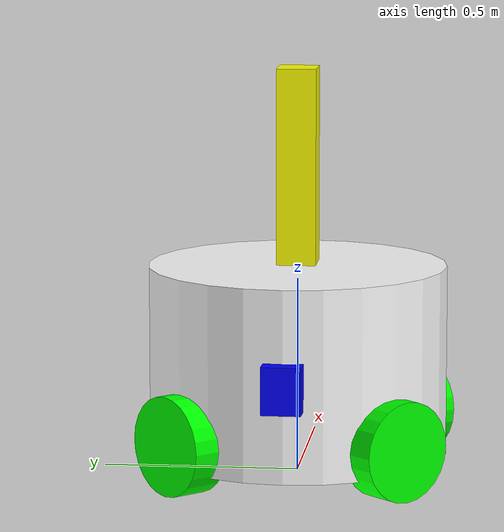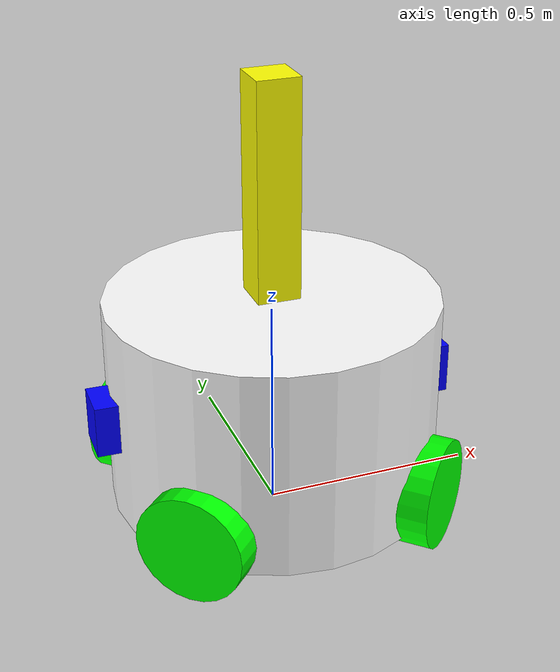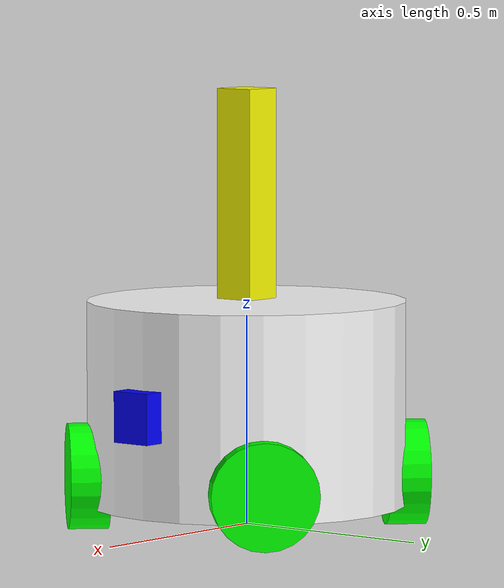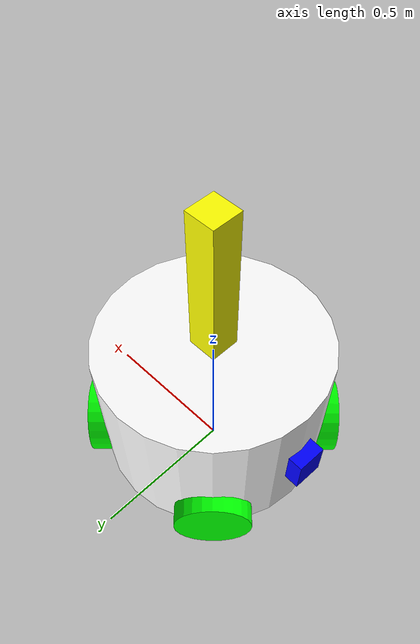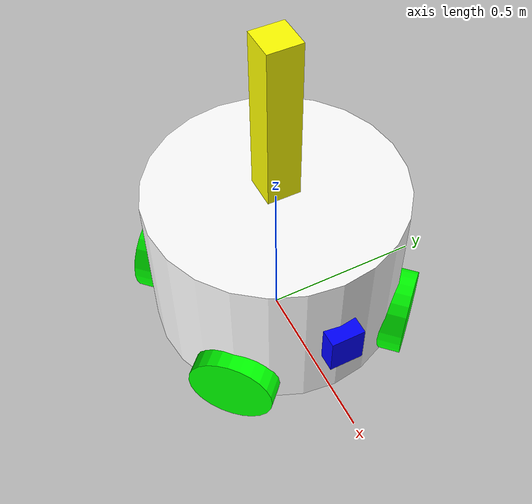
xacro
<?xml version="1.0"?>
<robot xmlns:xacro="http://www.ros.org/wiki/xacro" name="AMR">

    <link name="base_footprint">
    </link>

    <link name="main_body_link">
        <inertial>
            <origin xyz="0.0 0.0 0.0" rpy="0.0 0.0 0.0"/>
            <mass value="0.0"/>
            <inertia ixx="0.0" ixy="0.0" ixz="0.0" iyy="0.0" iyz="0.0" izz="0.0"/>
        </inertial>
        <visual name="">
            <origin xyz="0.0 0.0 0.0" rpy="0.0 0.0 0.0"/>
            <geometry>
                <cylinder radius="0.3815" length="0.487"/>
            </geometry>
            <material name="grey">
                <color rgba="1.0 1.0 1.0 1.0"/>
                <texture filename=""/>
            </material>
        </visual>
        <collision>
            <origin xyz="0.0 0.0 0.0" rpy="0.0 0.0 0.0"/>
            <geometry>
                <box size="0.0 0.0 0.0"/>
            </geometry>
        </collision>
    </link>

    <joint name="joint_name" type="fixed">
        <parent link="base_footprint"/>
        <child link="main_body_link"/>
        <origin xyz="0.0 0.0 0.293" rpy="0.0 0.0 0.0"/>
    </joint>

    <link name="floor_main_body_link">
    </link>

    <joint name="main_body_to_floor_main_body" type="fixed">
        <origin xyz="0.0 0.0 -0.173" rpy="0.0 0.0 0.0"/>
        <parent link="main_body_link"/>
        <child link="floor_main_body_link"/>
        <axis xyz="0.0 0.0 0.0"/>
        <limit lower="0.0" upper="0.0" effort="0.0" velocity="0.0"/>
    </joint>

    <link name="lidar_front_link">
        <inertial>
            <origin xyz="0.0 0.0 0.0" rpy="0.0 0.0 0.0"/>
            <mass value="0.0"/>
            <inertia ixx="0.0" ixy="0.0" ixz="0.0" iyy="0.0" iyz="0.0" izz="0.0"/>
        </inertial>
        <visual name="">
            <origin xyz="0.0 0.0 0.0" rpy="0.0 0.0 0.0"/>
            <geometry>
                <box size="0.10 0.10 0.12"/>
            </geometry>
            <material name="">
                <color rgba="0.0 0.0 1.0 1.0"/>
                <texture filename=""/>
            </material>
        </visual>
        <collision>
            <origin xyz="0.0 0.0 0.0" rpy="0.0 0.0 0.0"/>
            <geometry>
                <box size="0.0 0.0 0.0"/>
            </geometry>
        </collision>
    </link>

    <joint name="main_body_to_lidar_front" type="fixed">
        <parent link="main_body_link"/>
        <child link="lidar_front_link"/>
        <origin xyz="0.377 0.0 0.0" rpy="0.0 0.0 0.0"/>
    </joint>

    <link name="lidar_rear_link">
        <inertial>
            <origin xyz="0.0 0.0 0.0" rpy="0.0 0.0 0.0"/>
            <mass value="0.0"/>
            <inertia ixx="0.0" ixy="0.0" ixz="0.0" iyy="0.0" iyz="0.0" izz="0.0"/>
        </inertial>
        <visual name="">
            <origin xyz="0.0 0.0 0.0" rpy="0.0 0.0 0.0"/>
            <geometry>
                <box size="0.10 0.10 0.12"/>
            </geometry>
            <material name="">
                <color rgba="0.0 0.0 1.0 1.0"/>
                <texture filename=""/>
            </material>
        </visual>
        <collision>
            <origin xyz="0.0 0.0 0.0" rpy="0.0 0.0 0.0"/>
            <geometry>
                <box size="0.0 0.0 0.0"/>
            </geometry>
        </collision>
    </link>

    <joint name="main_body_to_lidar_rear" type="fixed">
        <parent link="main_body_link"/>
        <child link="lidar_rear_link"/>
        <origin xyz="-0.377 0.0 0.0" rpy="0.0 0.0 1.54"/>
    </joint>

    <link name="ceiling_main_body_link">
    </link>

    <joint name="main_body_to_ceiling" type="fixed">
        <parent link="main_body_link"/>
        <child link="ceiling_main_body_link"/>
        <origin xyz="0.0 0.0 0.248" rpy="0.0 0.0 0.0"/>
    </joint>

    <!-- Wrist -->
    <link name="wrist_link">
        <inertial>
            <origin xyz="0.0 0.0 0.0" rpy="0.0 0.0 0.0"/>
            <mass value="0.0"/>
            <inertia ixx="0.0" ixy="0.0" ixz="0.0" iyy="0.0" iyz="0.0" izz="0.0"/>
        </inertial>
        <visual name="">
            <origin xyz="0.0 0.0 0.0" rpy="0.0 0.0 0.0"/>
            <geometry>
                <box size="0.1 0.1 0.5"/>
            </geometry>
            <material name="">
                <color rgba="1.0 1.0 0.0 1.0"/>
                <texture filename=""/>
            </material>
        </visual>
        <collision>
            <origin xyz="0.0 0.0 0.0" rpy="0.0 0.0 0.0"/>
            <geometry>
                <box size="0.0 0.0 0.0"/>
            </geometry>
        </collision>
    </link>

    <joint name="ceiling_main_body_link_to_wrist_link" type="fixed">
        <parent link="ceiling_main_body_link"/>
        <child link="wrist_link"/>
        <origin xyz="0.0 0.0 0.25" rpy="0.0 0.0 0.0"/>
    </joint>

<xacro:macro name="wheel" params="position x y roll yaw">
    <link name="wheel_${position}_link">
        <inertial>
            <origin xyz="0.0 0.0 0.0" rpy="0.0 0.0 0.0"/>
            <mass value="0.0"/>
            <inertia ixx="0.0" ixy="0.0" ixz="0.0" iyy="0.0" iyz="0.0" izz="0.0"/>
        </inertial>
        <visual name="">
            <origin xyz="0.0 0.0 0.0" rpy="0.0 0.0 0.0"/>
            <geometry>
                <cylinder radius="0.127" length="0.095"/>

            </geometry>
            <material name="green">
                <color rgba="0.0 1.0 0.0 1.0"/>
                <texture filename=""/>
            </material>
        </visual>
        <collision>
            <origin xyz="0.0 0.0 0.0" rpy="0.0 0.0 0.0"/>
            <geometry>
                <box size="0.0 0.0 0.0"/>
            </geometry>
        </collision>
    </link>

    <joint name="floor_main_body_to_${position}_wheel" type="continuous">
        <parent link="floor_main_body_link"/>
        <child link="wheel_${position}_link"/>
        <axis xyz="0 0 1"/>
        <origin xyz="${x} ${y} 0" rpy="${roll} 0 ${yaw}"/>
    </joint>
</xacro:macro>
<xacro:wheel position="front_left" x="0.269" y="0.269" roll="1.57" yaw="-0.785"/>
<xacro:wheel position="front_right" x="0.269" y="-0.269" roll="1.57" yaw="0.785"/>
<xacro:wheel position="rear_right" x="-0.269" y="-0.269" roll="1.57" yaw="-0.785"/>
<xacro:wheel position="rear_left" x="-0.269" y="0.269" roll="1.57" yaw="0.785"/>

link

</robot>
